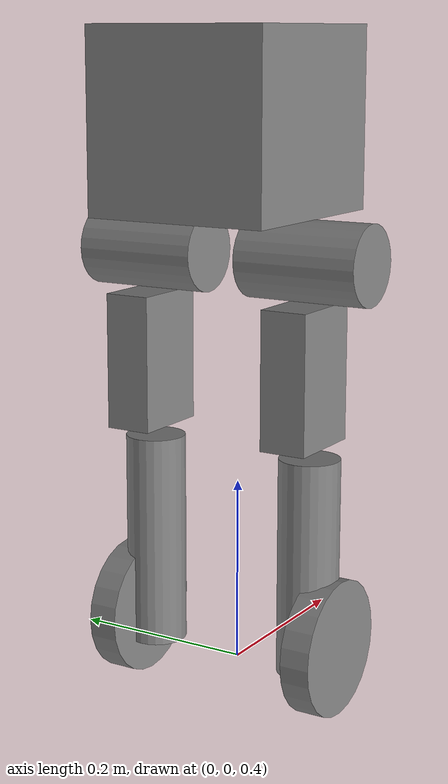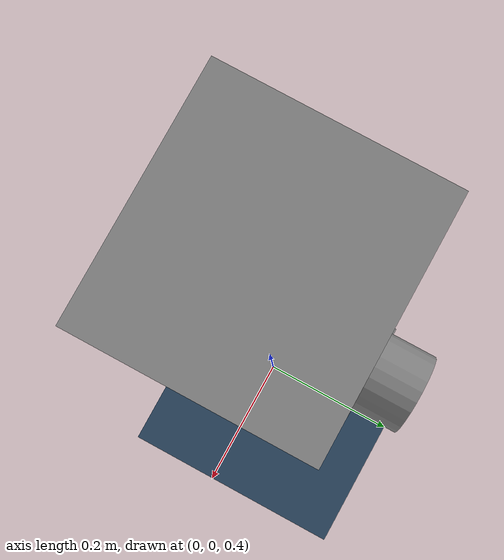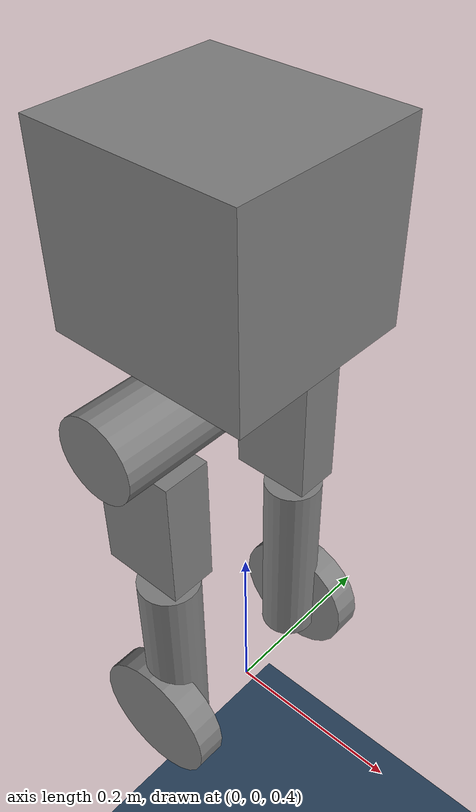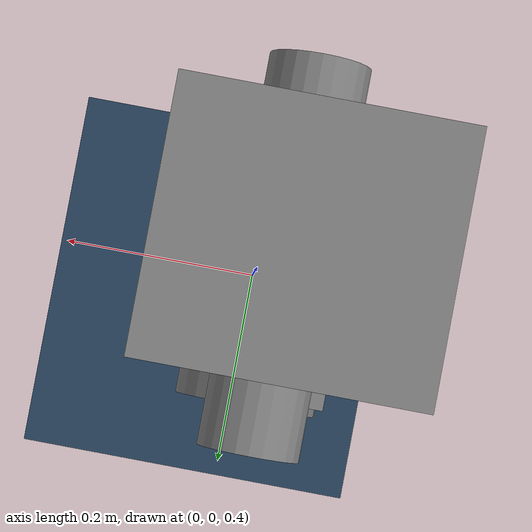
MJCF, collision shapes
<mujoco model="GOAT_Fixed">
    <compiler angle="radian" coordinate="local" meshdir="../meshes/" autolimits="true"/>

    <option timestep="0.005" gravity="0 0 -9.81" integrator="implicit" solver="Newton" iterations="32"/>

    <visual>
        <headlight diffuse="0.6 0.6 0.6" ambient="0.3 0.3 0.3" specular="0 0 0"/>
        <rgba haze="0.15 0.25 0.35 1"/>
        <global azimuth="120" elevation="-20"/>
    </visual>

    <asset>
        <texture  name="groundplane" type="2d" builtin="checker" mark="edge" rgb1="0.2 0.3 0.4" rgb2="0.1 0.2 0.3" markrgb="0.8 0.8 0.8" width="512" height="512"/>
        <material name="groundplane" texture="groundplane" texuniform="true" texrepeat="5 5" reflectance="0.2"/>
    </asset>

    <worldbody>
        <light directional="true" diffuse=".8 .8 .8" specular=".2 .2 .2" pos="0 0 5" dir="0 0 -1"/>
        <geom name="floor" type="plane" size="0 0 1" material="groundplane"/>
    </worldbody>

    <asset>
        <mesh name="base_Link" file="base_Link_simple.stl"/>
        <mesh name="hip_L_Link" file="hip_L_Link.stl"/>
        <mesh name="hip_R_Link" file="hip_R_Link.stl"/>
        <mesh name="thigh_L_Link" file="thigh_L_Link.stl"/>
        <mesh name="thigh_R_Link" file="thigh_R_Link.stl"/>
        <mesh name="calf_L_Link" file="calf_L_Link.stl"/>
        <mesh name="calf_R_Link" file="calf_R_Link.stl"/>
        <mesh name="wheel_L_Link" file="wheel_L_Link.stl"/>
        <mesh name="wheel_R_Link" file="wheel_R_Link.stl"/>

        <material name="orange" rgba="1.0 0.423 0.039 1.0"/>
        <material name="black" rgba="0.792 0.819 0.933 1.0"/>
        <material name="white" rgba="1.0 1.0 1.0 1.0"/>
    </asset>

    <default>
        <joint damping="0.0" frictionloss="0.0"/>
        <geom contype="1" conaffinity="1" friction="0.65 0.1 0.1"/>
        <motor ctrllimited="true"/>
    </default>

     <worldbody>
        <body name="base_Link" pos="0 0 1.0">
            <!-- Fixed base -->
            <site name="imu_site" pos="0 0 0" size="0.01" type="sphere" rgba="1 0 0 1"/>

            <inertial pos="-0.009521 0.000016 -0.072346" mass="3.119" fullinertia="0.020284450 0.023476973 0.021206204 -0.000005647 0.006404633 0.000000541"/>
            <geom type="mesh" mesh="base_Link" material="black" pos="-0.1235 0 0.0155" contype="0" conaffinity="0" group="1"/>
            <geom type="box" size="0.107 0.100 0.095" pos="-0.02 0 -0.015" group="3"/>

            <body name="hip_L_Link" pos="0.038386 0.094233 -0.152597">
                <joint name="hip_L_Joint" type="hinge" axis="-1 0 0" range="-1.7453 1.0123" damping="0.0" frictionloss="0.0" armature="0.001"/>
                <inertial pos="-0.048092 -0.038296 -0.000162" mass="0.316" fullinertia="0.000143701 0.000215732 0.000197705 -0.000012808 -0.000001530 -0.000000447"/>
                <geom type="mesh" mesh="hip_L_Link" material="black" contype="0" conaffinity="0" group="1"/>
                <geom type="cylinder" size="0.042 0.0675" pos="-0.0535 0 0" euler="1.57 0 0" group="3"/>

                <body name="thigh_L_Link" pos="-0.054 -0.017 0">
                    <joint name="thigh_L_Joint" type="hinge" axis="0 1 0" range="-0.3840 2.0071" damping="0.0" frictionloss="0.0" armature="0.001"/>
                    <inertial pos="-0.002015 0.042352 -0.035272" mass="0.496" fullinertia="0.003893000 0.002945000 0.001254000 0.000020446085 -0.000110100 0.000343500"/>
                    <geom type="mesh" mesh="thigh_L_Link" material="white" contype="0" conaffinity="0" group="1"/>
                    <geom type="box" size="0.045 0.025 0.0725" pos="-0.011 0.016 -0.116" group="3"/>

                    <body name="calf_L_Link" pos="0 0.018 -0.205">
                        <joint name="knee_L_Joint" type="hinge" axis="0 -1 0" range="-0.523599 2.3387" damping="0.0" frictionloss="0.0" armature="0.001"/>
                        <inertial pos="0.001969 0.000712 -0.160161" mass="0.326" fullinertia="0.009381000 0.009422000 0.000096695739 0.000000280420 0.000064503362 0.000041025966"/>
                        <geom type="mesh" mesh="calf_L_Link" material="black" contype="0" conaffinity="0" group="1"/>
                        <geom type="cylinder" size="0.0325 0.1165" pos="0 0 -0.116" group="3"/>

                        <body name="wheel_L_Link" pos="0 0.016555 -0.200">
                            <joint name="wheel_L_Joint" type="hinge" axis="0 1 0" damping="0.0" frictionloss="0.0" armature="0.001"/>
                            <inertial pos="0.000000 0.007264 -0.000002" mass="0.239" fullinertia="0.000338788 0.000647488 0.000338791 -0.000000001 -0.000000008 0.000000001"/>
                            <geom type="mesh" mesh="wheel_L_Link" material="orange" contype="0" conaffinity="0" group="1"/>
                            <geom name="wheel_L_collision" type="cylinder" size="0.07275 0.016" pos="0 0.007 0" euler="1.5707 0 0" group="3"/>
                        </body>
                    </body>
                </body>
            </body>

            <body name="hip_R_Link" pos="0.038386 -0.094233 -0.152597">
                <joint name="hip_R_Joint" type="hinge" axis="-1 0 0" range="-1.0123 1.7453" damping="0.0" frictionloss="0.0" armature="0.001"/>
                <inertial pos="-0.048092 0.038296 -0.000162" mass="0.322" fullinertia="0.000143701 0.000215732 0.000197705 0.000012808 -0.000001530 0.000000447"/>
                <geom type="mesh" mesh="hip_R_Link" material="black" contype="0" conaffinity="0" group="1"/>
                <geom type="cylinder" size="0.042 0.0675" pos="-0.0535 0 0" euler="1.57 0 0" group="3"/>

                <body name="thigh_R_Link" pos="-0.054 0.017 0">
                    <joint name="thigh_R_Joint" type="hinge" axis="0 -1 0" range="-2.0071 0.3840" damping="0.0" frictionloss="0.0" armature="0.001"/>
                    <inertial pos="-0.002015 -0.042352 -0.035272" mass="0.495" fullinertia="0.003893000 0.002945000 0.001254000 -0.000020446085 -0.000110100 -0.000343500"/>
                    <geom type="mesh" mesh="thigh_R_Link" material="white" contype="0" conaffinity="0" group="1"/>
                    <geom type="box" size="0.045 0.025 0.0725" pos="-0.011 -0.016 -0.116" group="3"/>

                    <body name="calf_R_Link" pos="0 -0.018 -0.205">
                        <joint name="knee_R_Joint" type="hinge" axis="0 1 0" range="-2.3387 0.523599" damping="0.0" frictionloss="0.0" armature="0.001"/>
                        <inertial pos="0.001969 -0.000712 -0.160161" mass="0.327" fullinertia="0.009381000 0.009422000 0.000096695739 -0.000000280420 0.000064503362 -0.000041025966"/>
                        <geom type="mesh" mesh="calf_R_Link" material="black" contype="0" conaffinity="0" group="1"/>
                        <geom type="cylinder" size="0.0325 0.1165" pos="0 0 -0.116" group="3"/>

                        <body name="wheel_R_Link" pos="0 -0.016555 -0.200">
                            <joint name="wheel_R_Joint" type="hinge" axis="0 -1 0" damping="0.0" frictionloss="0.0" armature="0.001"/>
                            <inertial pos="0.000000 -0.007264 -0.000002" mass="0.217" fullinertia="0.000338788 0.000647488 0.000338791 0.000000001 -0.000000008 -0.000000001"/>
                            <geom type="mesh" mesh="wheel_R_Link" material="orange" contype="0" conaffinity="0" group="1"/>
                            <geom name="wheel_R_collision" type="cylinder" size="0.07275 0.016" pos="0 -0.007 0" euler="1.5707 0 0" group="3"/>
                        </body>
                    </body>
                </body>
            </body>
        </body>
    </worldbody>

    <!-- Wheel-ground friction controlled explicitly via contact pairs. -->
    <contact>
        <exclude body1="base_Link"    body2="hip_L_Link"/>
        <exclude body1="base_Link"    body2="hip_R_Link"/>
        <exclude body1="base_Link"    body2="thigh_L_Link"/>
        <exclude body1="base_Link"    body2="thigh_R_Link"/>
        <exclude body1="base_Link"    body2="calf_L_Link"/>
        <exclude body1="base_Link"    body2="calf_R_Link"/>
        <exclude body1="base_Link"    body2="wheel_L_Link"/>
        <exclude body1="base_Link"    body2="wheel_R_Link"/>
        <exclude body1="hip_L_Link"   body2="hip_R_Link"/>
        <exclude body1="hip_L_Link"   body2="thigh_R_Link"/>
        <exclude body1="hip_L_Link"   body2="calf_L_Link"/>
        <exclude body1="hip_L_Link"   body2="calf_R_Link"/>
        <exclude body1="hip_L_Link"   body2="wheel_L_Link"/>
        <exclude body1="hip_L_Link"   body2="wheel_R_Link"/>
        <exclude body1="hip_R_Link"   body2="thigh_L_Link"/>
        <exclude body1="hip_R_Link"   body2="calf_L_Link"/>
        <exclude body1="hip_R_Link"   body2="calf_R_Link"/>
        <exclude body1="hip_R_Link"   body2="wheel_L_Link"/>
        <exclude body1="hip_R_Link"   body2="wheel_R_Link"/>
        <exclude body1="thigh_L_Link" body2="thigh_R_Link"/>
        <exclude body1="thigh_L_Link" body2="calf_R_Link"/>
        <exclude body1="thigh_L_Link" body2="wheel_L_Link"/>
        <exclude body1="thigh_L_Link" body2="wheel_R_Link"/>
        <exclude body1="thigh_R_Link" body2="calf_L_Link"/>
        <exclude body1="thigh_R_Link" body2="wheel_L_Link"/>
        <exclude body1="thigh_R_Link" body2="wheel_R_Link"/>
        <exclude body1="calf_L_Link"  body2="calf_R_Link"/>
        <exclude body1="calf_L_Link"  body2="wheel_R_Link"/>
        <exclude body1="calf_R_Link"  body2="wheel_L_Link"/>
        <exclude body1="wheel_L_Link" body2="wheel_R_Link"/>
    </contact>

    <contact>
        <pair name="floor_wheel_L"
            geom1="floor"
            geom2="wheel_L_collision"
            condim="3"
            friction="1.0 1.0 0.0 0.0 0.0"
            solref="0.02 1.0"
            solimp="0.9 0.95 0.001 0.5 2"/>

        <pair name="floor_wheel_R"
            geom1="floor"
            geom2="wheel_R_collision"
            condim="3"
            friction="1.0 1.0 0.0 0.0 0.0"
            solref="0.02 1.0"
            solimp="0.9 0.95 0.001 0.5 2"/>
    </contact>

    <actuator>
        <motor name="hip_L_Joint"   joint="hip_L_Joint"   ctrllimited="true" ctrlrange="-4.5 4.5"  forcelimited="true" forcerange="-4.5 4.5"/>
        <motor name="thigh_L_Joint" joint="thigh_L_Joint" ctrllimited="true" ctrlrange="-4.5 4.5"  forcelimited="true" forcerange="-4.5 4.5"/>
        <motor name="knee_L_Joint"  joint="knee_L_Joint"  ctrllimited="true" ctrlrange="-9.0 9.0"  forcelimited="true" forcerange="-9.0 9.0"/>
        <motor name="wheel_L_Joint" joint="wheel_L_Joint" ctrllimited="true" ctrlrange="-2.5 2.5"  forcelimited="true" forcerange="-2.5 2.5"/>
        <motor name="hip_R_Joint"   joint="hip_R_Joint"   ctrllimited="true" ctrlrange="-4.5 4.5"  forcelimited="true" forcerange="-4.5 4.5"/>
        <motor name="thigh_R_Joint" joint="thigh_R_Joint" ctrllimited="true" ctrlrange="-4.5 4.5"  forcelimited="true" forcerange="-4.5 4.5"/>
        <motor name="knee_R_Joint"  joint="knee_R_Joint"  ctrllimited="true" ctrlrange="-9.0 9.0"  forcelimited="true" forcerange="-9.0 9.0"/>
        <motor name="wheel_R_Joint" joint="wheel_R_Joint" ctrllimited="true" ctrlrange="-2.5 2.5"  forcelimited="true" forcerange="-2.5 2.5"/>
    </actuator>

    <keyframe>
        <!-- ctrl is torque, so the home pose starts from zero torque. (It used to
             repeat qpos, which injected a constant bias torque on every reset.) -->
        <key name="home"
            qpos="0 1.0942 1.8852 0   0 -1.0942 -1.8852 0"
            qvel="0 0 0 0             0 0 0 0"
            ctrl="0 0 0 0             0 0 0 0"/>
    </keyframe>

    <sensor>
        <accelerometer name="imu_acc" site="imu_site"/>
        <gyro name="imu_gyro" site="imu_site"/>
        <magnetometer name="imu_mag" site="imu_site"/>
    </sensor>

</mujoco>
